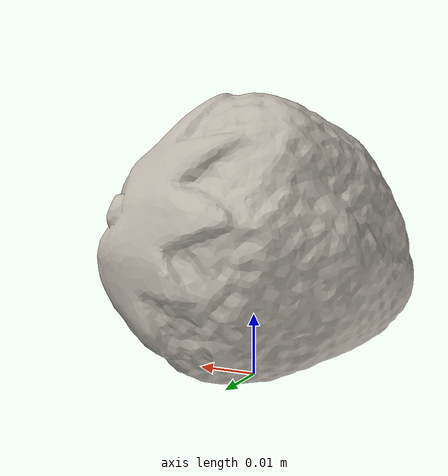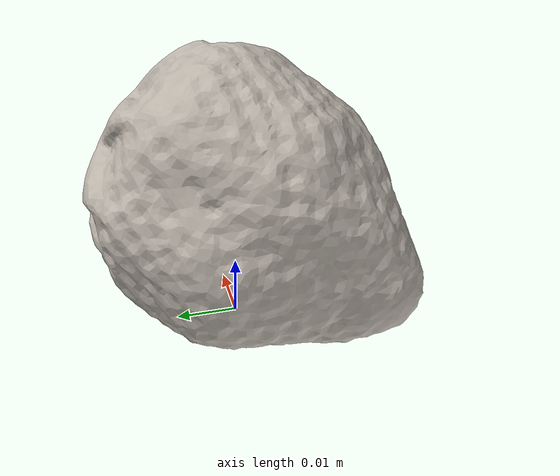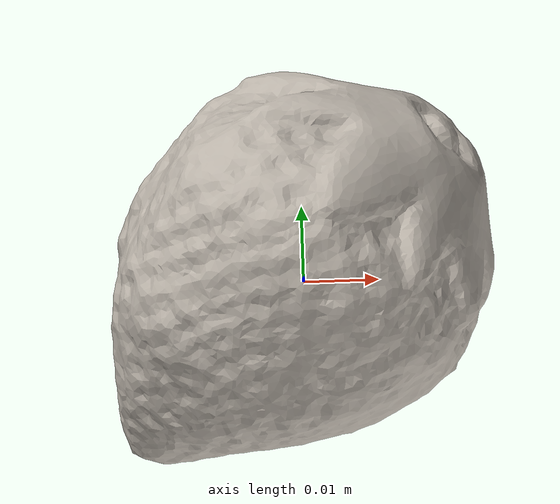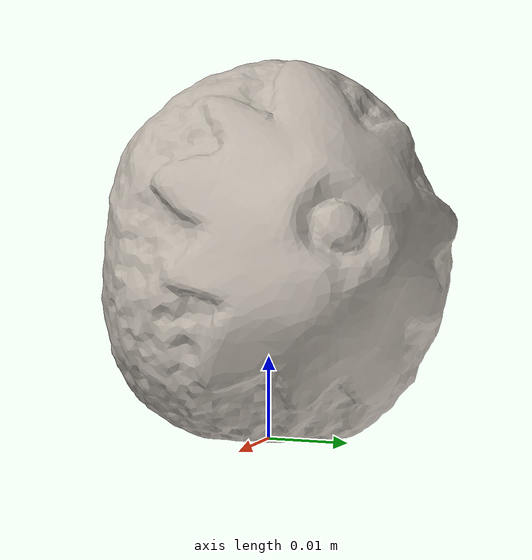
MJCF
<mujoco model="strawberry">
  <compiler angle="radian" meshdir="." texturedir="."/>
  <asset>
    <mesh name="strawberry_mesh" file="strawberry.obj" maxhullvert="64"/>
    <texture name="strawberry_tex" type="2d" file="strawberry.png"/>
    <material name="strawberry_mat" texture="strawberry_tex" specular="0.25" shininess="0.3"/>
  </asset>
  <worldbody>
    <body name="strawberry" pos="0 0 0">
      <inertial pos="-0.000630877 -0.00034432 0.0213315" quat="0.38003 0.18857 0.596939 0.680942" mass="0.025" diaginertia="5.76474e-06 5.22837e-06 4.70103e-06"/>
      <site name="strawberry_center" pos="0 0 0" size="0.005" rgba="0 0 0 0"/>
      <geom name="strawberry_vis0" type="mesh" mesh="strawberry_mesh" pos="0.000862996 -0.015777 0.000217001" material="strawberry_mat" group="2" contype="0" conaffinity="0"/>
      <geom name="strawberry_col1" type="mesh" mesh="strawberry_mesh" pos="0.000862996 -0.015777 0.000217001" rgba="0.5 0.5 0.5 0.3" group="3" condim="6" friction="1 0.02 0.004"/>
    </body>
  </worldbody>
</mujoco>
